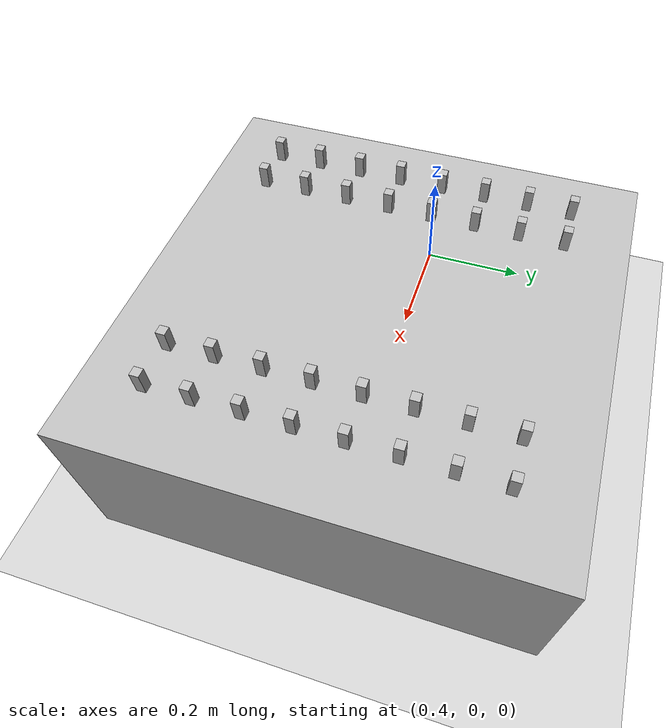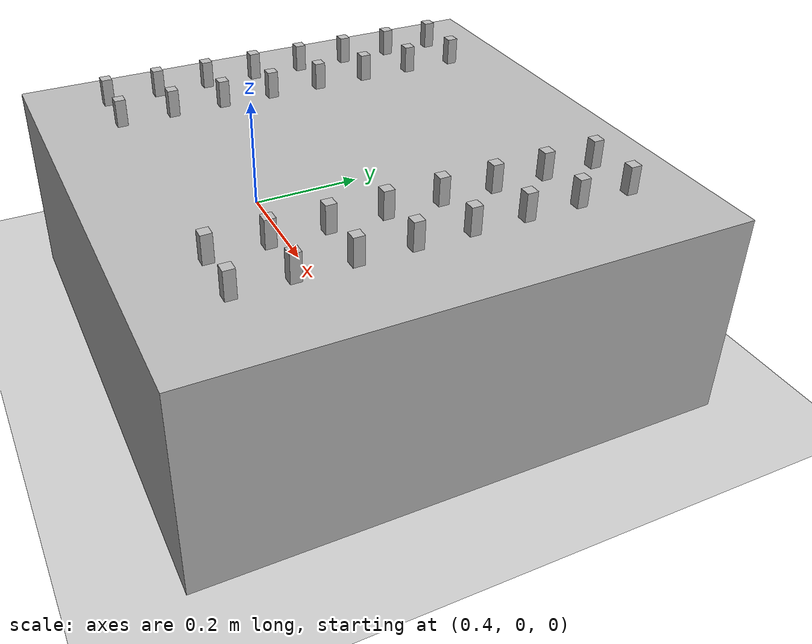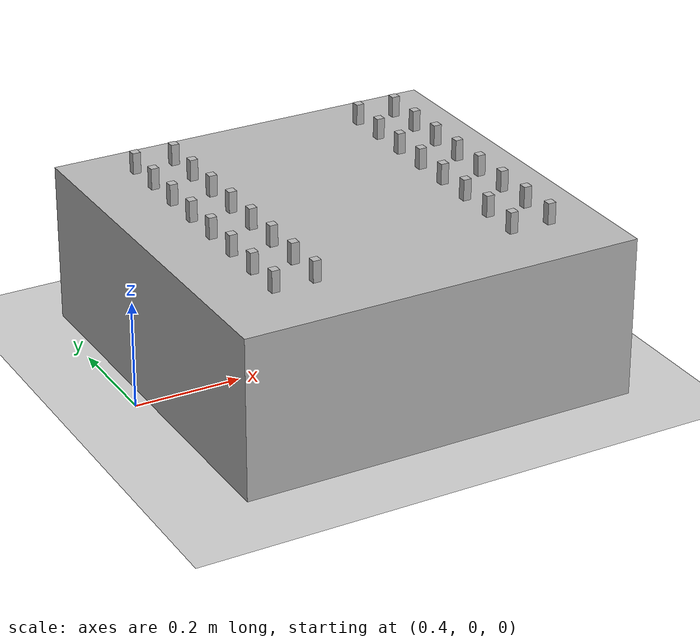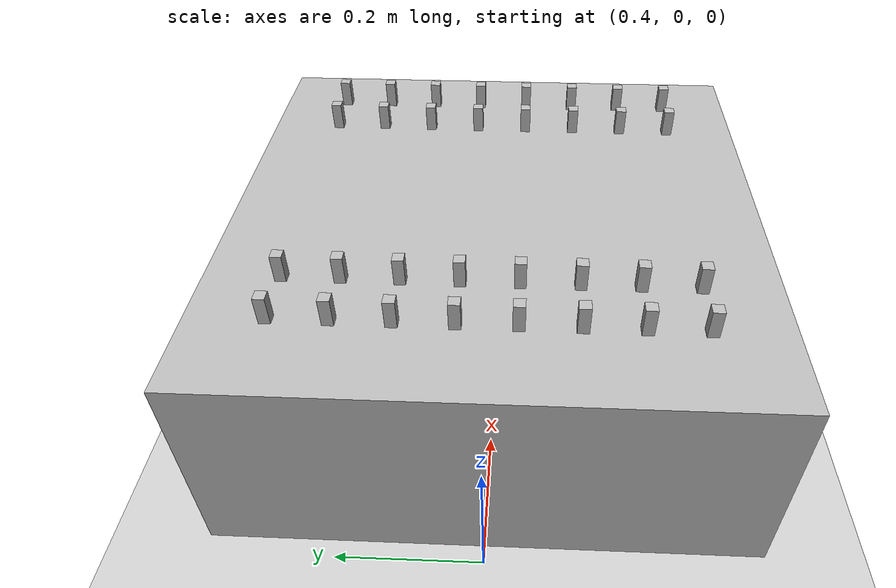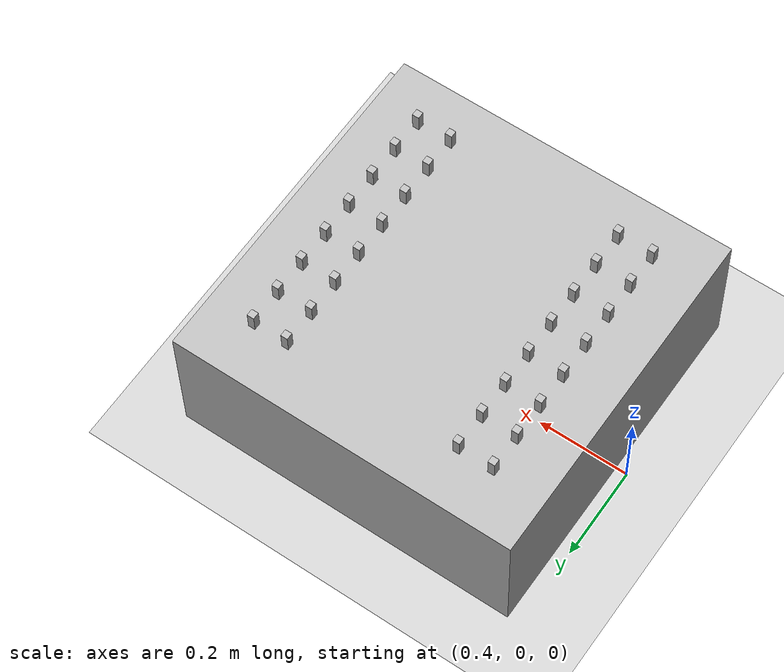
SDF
<sdf version="1.5">
 <world name="default">
  <include><uri>model://sun</uri></include>
  <include><uri>model://ground_plane</uri></include>
  <model name="table">
   <static>1</static>
   <pose>0.8 0 0.15 0 0 0</pose>
   <link name="link">
    <inertial>
     <mass>1</mass>
     <inertia>
      <ixx>0.166667</ixx>
      <ixy>0</ixy>
      <ixz>0</ixz>
      <iyy>0.166667</iyy>
      <iyz>0</iyz>
      <izz>0.166667</izz>
     </inertia>
    </inertial>
    <visual name="visual"><geometry><box><size>0.75 0.75 0.3</size></box></geometry></visual>
    <collision name="collision"><geometry><box><size>0.75 0.75 0.3</size></box></geometry></collision>
   </link>
  </model>
  <model name="piece11">
   <pose>0.535 -0.266 0.33 0 0 0</pose>
   <link name="box">
    <inertial>
     <mass>1</mass>
     <inertia><ixx>2</ixx><ixy>0.0</ixy><ixz>0.0</ixz><iyy>2</iyy><iyz>0.0</iyz><izz>1</izz></inertia>
    </inertial>
    <visual name="first"><geometry><box><size>0.015 0.015 0.04</size></box></geometry></visual>
    <collision name="first">
     <geometry><box><size>0.01 0.01 0.04</size></box></geometry>
     <surface>
      <friction><ode><slip1>0.1</slip1><slip2>0</slip2><mu>1</mu><mu2>0</mu2></ode></friction>
      <contact><ode><kp>10000.0</kp><kd>1.0</kd><min_depth>0</min_depth></ode></contact>
     </surface>
    </collision>
   </link>
  </model>
  <model name="piece12">
   <pose>0.535 -0.19 0.33 0 0 0</pose>
   <link name="box">
    <inertial>
     <mass>1</mass>
     <inertia><ixx>2</ixx><ixy>0.0</ixy><ixz>0.0</ixz><iyy>2</iyy><iyz>0.0</iyz><izz>1</izz></inertia>
    </inertial>
    <visual name="first"><geometry><box><size>0.015 0.015 0.04</size></box></geometry></visual>
    <collision name="first">
     <geometry><box><size>0.01 0.01 0.04</size></box></geometry>
     <surface>
      <friction><ode><slip1>0.1</slip1><slip2>0</slip2><mu>1</mu><mu2>0</mu2></ode></friction>
      <contact><ode><kp>10000.0</kp><kd>1.0</kd><min_depth>0</min_depth></ode></contact>
     </surface>
    </collision>
   </link>
  </model>
  <model name="piece13">
   <pose>0.535 -0.114 0.33 0 0 0</pose>
   <link name="box">
    <inertial>
     <mass>1</mass>
     <inertia><ixx>2</ixx><ixy>0.0</ixy><ixz>0.0</ixz><iyy>2</iyy><iyz>0.0</iyz><izz>1</izz></inertia>
    </inertial>
    <visual name="first"><geometry><box><size>0.015 0.015 0.04</size></box></geometry></visual>
    <collision name="first">
     <geometry><box><size>0.01 0.01 0.04</size></box></geometry>
     <surface>
      <friction><ode><slip1>0.1</slip1><slip2>0</slip2><mu>1</mu><mu2>0</mu2></ode></friction>
      <contact><ode><kp>10000.0</kp><kd>1.0</kd><min_depth>0</min_depth></ode></contact>
     </surface>
    </collision>
   </link>
  </model>
  <model name="piece14">
   <pose>0.535 -0.038 0.33 0 0 0</pose>
   <link name="box">
    <inertial>
     <mass>1</mass>
     <inertia><ixx>2</ixx><ixy>0.0</ixy><ixz>0.0</ixz><iyy>2</iyy><iyz>0.0</iyz><izz>1</izz></inertia>
    </inertial>
    <visual name="first"><geometry><box><size>0.015 0.015 0.04</size></box></geometry></visual>
    <collision name="first">
     <geometry><box><size>0.01 0.01 0.04</size></box></geometry>
     <surface>
      <friction><ode><slip1>0.1</slip1><slip2>0</slip2><mu>1</mu><mu2>0</mu2></ode></friction>
      <contact><ode><kp>10000.0</kp><kd>1.0</kd><min_depth>0</min_depth></ode></contact>
     </surface>
    </collision>
   </link>
  </model>
  <model name="piece15">
   <pose>0.535 0.038 0.33 0 0 0</pose>
   <link name="box">
    <inertial>
     <mass>1</mass>
     <inertia><ixx>2</ixx><ixy>0.0</ixy><ixz>0.0</ixz><iyy>2</iyy><iyz>0.0</iyz><izz>1</izz></inertia>
    </inertial>
    <visual name="first"><geometry><box><size>0.015 0.015 0.04</size></box></geometry></visual>
    <collision name="first">
     <geometry><box><size>0.01 0.01 0.04</size></box></geometry>
     <surface>
      <friction><ode><slip1>0.1</slip1><slip2>0</slip2><mu>1</mu><mu2>0</mu2></ode></friction>
      <contact><ode><kp>10000.0</kp><kd>1.0</kd><min_depth>0</min_depth></ode></contact>
     </surface>
    </collision>
   </link>
  </model>
  <model name="piece16">
   <pose>0.535 +0.114 0.33 0 0 0</pose>
   <link name="box">
    <inertial>
     <mass>1</mass>
     <inertia><ixx>2</ixx><ixy>0.0</ixy><ixz>0.0</ixz><iyy>2</iyy><iyz>0.0</iyz><izz>1</izz></inertia>
    </inertial>
    <visual name="first"><geometry><box><size>0.015 0.015 0.04</size></box></geometry></visual>
    <collision name="first">
     <geometry><box><size>0.01 0.01 0.04</size></box></geometry>
     <surface>
      <friction><ode><slip1>0.1</slip1><slip2>0</slip2><mu>1</mu><mu2>0</mu2></ode></friction>
      <contact><ode><kp>10000.0</kp><kd>1.0</kd><min_depth>0</min_depth></ode></contact>
     </surface>
    </collision>
   </link>
  </model>
  <model name="piece17">
   <pose>0.535 0.19 0.33 0 0 0</pose>
   <link name="box">
    <inertial>
     <mass>1</mass>
     <inertia><ixx>2</ixx><ixy>0.0</ixy><ixz>0.0</ixz><iyy>2</iyy><iyz>0.0</iyz><izz>1</izz></inertia>
    </inertial>
    <visual name="first"><geometry><box><size>0.015 0.015 0.04</size></box></geometry></visual>
    <collision name="first">
     <geometry><box><size>0.01 0.01 0.04</size></box></geometry>
     <surface>
      <friction><ode><slip1>0.1</slip1><slip2>0</slip2><mu>1</mu><mu2>0</mu2></ode></friction>
      <contact><ode><kp>10000.0</kp><kd>1.0</kd><min_depth>0</min_depth></ode></contact>
     </surface>
    </collision>
   </link>
  </model>
  <model name="piece18">
   <pose>0.535 0.266 0.33 0 0 0</pose>
   <link name="box">
    <inertial>
     <mass>1</mass>
     <inertia><ixx>2</ixx><ixy>0.0</ixy><ixz>0.0</ixz><iyy>2</iyy><iyz>0.0</iyz><izz>1</izz></inertia>
    </inertial>
    <visual name="first"><geometry><box><size>0.015 0.015 0.04</size></box></geometry></visual>
    <collision name="first">
     <geometry><box><size>0.01 0.01 0.04</size></box></geometry>
     <surface>
      <friction><ode><slip1>0.1</slip1><slip2>0</slip2><mu>1</mu><mu2>0</mu2></ode></friction>
      <contact><ode><kp>10000.0</kp><kd>1.0</kd><min_depth>0</min_depth></ode></contact>
     </surface>
    </collision>
   </link>
  </model>
  <model name="piece21">
   <pose>0.611 -0.266 0.33 0 0 0</pose>
   <link name="box">
    <inertial>
     <mass>1</mass>
     <inertia><ixx>2</ixx><ixy>0.0</ixy><ixz>0.0</ixz><iyy>2</iyy><iyz>0.0</iyz><izz>1</izz></inertia>
    </inertial>
    <visual name="first"><geometry><box><size>0.015 0.015 0.04</size></box></geometry></visual>
    <collision name="first">
     <geometry><box><size>0.01 0.01 0.04</size></box></geometry>
     <surface>
      <friction><ode><slip1>0.3</slip1><slip2>0</slip2><mu>1</mu><mu2>0</mu2></ode></friction>
      <contact><ode><kp>100000.0</kp><kd>1.0</kd><min_depth>0</min_depth></ode></contact>
     </surface>
    </collision>
   </link>
  </model>
  <model name="piece22">
   <pose>0.611 -0.19 0.33 0 0 0</pose>
   <link name="box">
    <inertial>
     <mass>1</mass>
     <inertia><ixx>2</ixx><ixy>0.0</ixy><ixz>0.0</ixz><iyy>2</iyy><iyz>0.0</iyz><izz>1</izz></inertia>
    </inertial>
    <visual name="first"><geometry><box><size>0.015 0.015 0.04</size></box></geometry></visual>
    <collision name="first">
     <geometry><box><size>0.01 0.01 0.04</size></box></geometry>
     <surface>
      <friction><ode><slip1>0.1</slip1><slip2>0</slip2><mu>1</mu><mu2>0</mu2></ode></friction>
      <contact><ode><kp>10000.0</kp><kd>1.0</kd><min_depth>0</min_depth></ode></contact>
     </surface>
    </collision>
   </link>
  </model>
  <model name="piece23">
   <pose>0.611 -0.114 0.33 0 0 0</pose>
   <link name="box">
    <inertial>
     <mass>1</mass>
     <inertia><ixx>2</ixx><ixy>0.0</ixy><ixz>0.0</ixz><iyy>2</iyy><iyz>0.0</iyz><izz>1</izz></inertia>
    </inertial>
    <visual name="first"><geometry><box><size>0.015 0.015 0.04</size></box></geometry></visual>
    <collision name="first">
     <geometry><box><size>0.01 0.01 0.04</size></box></geometry>
     <surface>
      <friction><ode><slip1>0.1</slip1><slip2>0</slip2><mu>1</mu><mu2>0</mu2></ode></friction>
      <contact><ode><kp>10000.0</kp><kd>1.0</kd><min_depth>0</min_depth></ode></contact>
     </surface>
    </collision>
   </link>
  </model>
  <model name="piece24">
   <pose>0.611 -0.038 0.33 0 0 0</pose>
   <link name="box">
    <inertial>
     <mass>1</mass>
     <inertia><ixx>2</ixx><ixy>0.0</ixy><ixz>0.0</ixz><iyy>2</iyy><iyz>0.0</iyz><izz>1</izz></inertia>
    </inertial>
    <visual name="first"><geometry><box><size>0.015 0.015 0.04</size></box></geometry></visual>
    <collision name="first">
     <geometry><box><size>0.01 0.01 0.04</size></box></geometry>
     <surface>
      <friction><ode><slip1>0.1</slip1><slip2>0</slip2><mu>1</mu><mu2>0</mu2></ode></friction>
      <contact><ode><kp>10000.0</kp><kd>1.0</kd><min_depth>0</min_depth></ode></contact>
     </surface>
    </collision>
   </link>
  </model>
  <model name="piece25">
   <pose>0.611 0.038 0.33 0 0 0</pose>
   <link name="box">
    <inertial>
     <mass>1</mass>
     <inertia><ixx>2</ixx><ixy>0.0</ixy><ixz>0.0</ixz><iyy>2</iyy><iyz>0.0</iyz><izz>1</izz></inertia>
    </inertial>
    <visual name="first"><geometry><box><size>0.015 0.015 0.04</size></box></geometry></visual>
    <collision name="first">
     <geometry><box><size>0.01 0.01 0.04</size></box></geometry>
     <surface>
      <friction><ode><slip1>0.1</slip1><slip2>0</slip2><mu>1</mu><mu2>0</mu2></ode></friction>
      <contact><ode><kp>10000.0</kp><kd>1.0</kd><min_depth>0</min_depth></ode></contact>
     </surface>
    </collision>
   </link>
  </model>
  <model name="piece26">
   <pose>0.611 +0.114 0.33 0 0 0</pose>
   <link name="box">
    <inertial>
     <mass>1</mass>
     <inertia><ixx>2</ixx><ixy>0.0</ixy><ixz>0.0</ixz><iyy>2</iyy><iyz>0.0</iyz><izz>1</izz></inertia>
    </inertial>
    <visual name="first"><geometry><box><size>0.015 0.015 0.04</size></box></geometry></visual>
    <collision name="first">
     <geometry><box><size>0.01 0.01 0.04</size></box></geometry>
     <surface>
      <friction><ode><slip1>0.1</slip1><slip2>0</slip2><mu>1</mu><mu2>0</mu2></ode></friction>
      <contact><ode><kp>10000.0</kp><kd>1.0</kd><min_depth>0</min_depth></ode></contact>
     </surface>
    </collision>
   </link>
  </model>
  <model name="piece27">
   <pose>0.611 0.19 0.33 0 0 0</pose>
   <link name="box">
    <inertial>
     <mass>1</mass>
     <inertia><ixx>2</ixx><ixy>0.0</ixy><ixz>0.0</ixz><iyy>2</iyy><iyz>0.0</iyz><izz>1</izz></inertia>
    </inertial>
    <visual name="first"><geometry><box><size>0.015 0.015 0.04</size></box></geometry></visual>
    <collision name="first">
     <geometry><box><size>0.01 0.01 0.04</size></box></geometry>
     <surface>
      <friction><ode><slip1>0.1</slip1><slip2>0</slip2><mu>1</mu><mu2>0</mu2></ode></friction>
      <contact><ode><kp>10000.0</kp><kd>1.0</kd><min_depth>0</min_depth></ode></contact>
     </surface>
    </collision>
   </link>
  </model>
  <model name="piece28">
   <pose>0.611 0.266 0.33 0 0 0</pose>
   <link name="box">
    <inertial>
     <mass>1</mass>
     <inertia><ixx>2</ixx><ixy>0.0</ixy><ixz>0.0</ixz><iyy>2</iyy><iyz>0.0</iyz><izz>1</izz></inertia>
    </inertial>
    <visual name="first"><geometry><box><size>0.015 0.015 0.04</size></box></geometry></visual>
    <collision name="first">
     <geometry><box><size>0.01 0.01 0.04</size></box></geometry>
     <surface>
      <friction><ode><slip1>0.1</slip1><slip2>0</slip2><mu>1</mu><mu2>0</mu2></ode></friction>
      <contact><ode><kp>10000.0</kp><kd>1.0</kd><min_depth>0</min_depth></ode></contact>
     </surface>
    </collision>
   </link>
  </model>
  <model name="piece81">
   <pose>1.067 -0.266 0.33 0 0 0</pose>
   <link name="box">
    <inertial>
     <mass>1</mass>
     <inertia><ixx>2</ixx><ixy>0.0</ixy><ixz>0.0</ixz><iyy>2</iyy><iyz>0.0</iyz><izz>1</izz></inertia>
    </inertial>
    <visual name="first"><geometry><box><size>0.015 0.015 0.04</size></box></geometry></visual>
    <collision name="first">
     <geometry><box><size>0.01 0.01 0.04</size></box></geometry>
     <surface>
      <friction><ode><slip1>0.1</slip1><slip2>0</slip2><mu>1</mu><mu2>0</mu2></ode></friction>
      <contact><ode><kp>10000.0</kp><kd>1.0</kd><min_depth>0</min_depth></ode></contact>
     </surface>
    </collision>
   </link>
  </model>
  <model name="piece82">
   <pose>1.067 -0.19 0.33 0 0 0</pose>
   <link name="box">
    <inertial>
     <mass>1</mass>
     <inertia><ixx>2</ixx><ixy>0.0</ixy><ixz>0.0</ixz><iyy>2</iyy><iyz>0.0</iyz><izz>1</izz></inertia>
    </inertial>
    <visual name="first"><geometry><box><size>0.015 0.015 0.04</size></box></geometry></visual>
    <collision name="first">
     <geometry><box><size>0.01 0.01 0.04</size></box></geometry>
     <surface>
      <friction><ode><slip1>0.1</slip1><slip2>0</slip2><mu>1</mu><mu2>0</mu2></ode></friction>
      <contact><ode><kp>10000.0</kp><kd>1.0</kd><min_depth>0</min_depth></ode></contact>
     </surface>
    </collision>
   </link>
  </model>
  <model name="piece83">
   <pose>1.067 -0.114 0.33 0 0 0</pose>
   <link name="box">
    <inertial>
     <mass>1</mass>
     <inertia><ixx>2</ixx><ixy>0.0</ixy><ixz>0.0</ixz><iyy>2</iyy><iyz>0.0</iyz><izz>1</izz></inertia>
    </inertial>
    <visual name="first"><geometry><box><size>0.015 0.015 0.04</size></box></geometry></visual>
    <collision name="first">
     <geometry><box><size>0.01 0.01 0.04</size></box></geometry>
     <surface>
      <friction><ode><slip1>0.1</slip1><slip2>0</slip2><mu>1</mu><mu2>0</mu2></ode></friction>
      <contact><ode><kp>10000.0</kp><kd>1.0</kd><min_depth>0</min_depth></ode></contact>
     </surface>
    </collision>
   </link>
  </model>
  <model name="piece84">
   <pose>1.067 -0.038 0.33 0 0 0</pose>
   <link name="box">
    <inertial>
     <mass>1</mass>
     <inertia><ixx>2</ixx><ixy>0.0</ixy><ixz>0.0</ixz><iyy>2</iyy><iyz>0.0</iyz><izz>1</izz></inertia>
    </inertial>
    <visual name="first"><geometry><box><size>0.015 0.015 0.04</size></box></geometry></visual>
    <collision name="first">
     <geometry><box><size>0.01 0.01 0.04</size></box></geometry>
     <surface>
      <friction><ode><slip1>0.1</slip1><slip2>0</slip2><mu>1</mu><mu2>0</mu2></ode></friction>
      <contact><ode><kp>10000.0</kp><kd>1.0</kd><min_depth>0</min_depth></ode></contact>
     </surface>
    </collision>
   </link>
  </model>
  <model name="piece85">
   <pose>1.067 0.038 0.33 0 0 0</pose>
   <link name="box">
    <inertial>
     <mass>1</mass>
     <inertia><ixx>2</ixx><ixy>0.0</ixy><ixz>0.0</ixz><iyy>2</iyy><iyz>0.0</iyz><izz>1</izz></inertia>
    </inertial>
    <visual name="first"><geometry><box><size>0.015 0.015 0.04</size></box></geometry></visual>
    <collision name="first">
     <geometry><box><size>0.01 0.01 0.04</size></box></geometry>
     <surface>
      <friction><ode><slip1>0.1</slip1><slip2>0</slip2><mu>1</mu><mu2>0</mu2></ode></friction>
      <contact><ode><kp>10000.0</kp><kd>1.0</kd><min_depth>0</min_depth></ode></contact>
     </surface>
    </collision>
   </link>
  </model>
  <model name="piece86">
   <pose>1.067 +0.114 0.33 0 0 0</pose>
   <link name="box">
    <inertial>
     <mass>1</mass>
     <inertia><ixx>2</ixx><ixy>0.0</ixy><ixz>0.0</ixz><iyy>2</iyy><iyz>0.0</iyz><izz>1</izz></inertia>
    </inertial>
    <visual name="first"><geometry><box><size>0.015 0.015 0.04</size></box></geometry></visual>
    <collision name="first">
     <geometry><box><size>0.01 0.01 0.04</size></box></geometry>
     <surface>
      <friction><ode><slip1>0.1</slip1><slip2>0</slip2><mu>1</mu><mu2>0</mu2></ode></friction>
      <contact><ode><kp>10000.0</kp><kd>1.0</kd><min_depth>0</min_depth></ode></contact>
     </surface>
    </collision>
   </link>
  </model>
  <model name="piece87">
   <pose>1.067 0.19 0.33 0 0 0</pose>
   <link name="box">
    <inertial>
     <mass>1</mass>
     <inertia><ixx>2</ixx><ixy>0.0</ixy><ixz>0.0</ixz><iyy>2</iyy><iyz>0.0</iyz><izz>1</izz></inertia>
    </inertial>
    <visual name="first"><geometry><box><size>0.015 0.015 0.04</size></box></geometry></visual>
    <collision name="first">
     <geometry><box><size>0.01 0.01 0.04</size></box></geometry>
     <surface>
      <friction><ode><slip1>0.1</slip1><slip2>0</slip2><mu>1</mu><mu2>0</mu2></ode></friction>
      <contact><ode><kp>10000.0</kp><kd>1.0</kd><min_depth>0</min_depth></ode></contact>
     </surface>
    </collision>
   </link>
  </model>
  <model name="piece88">
   <pose>1.067 0.266 0.33 0 0 0</pose>
   <link name="box">
    <inertial>
     <mass>1</mass>
     <inertia><ixx>2</ixx><ixy>0.0</ixy><ixz>0.0</ixz><iyy>2</iyy><iyz>0.0</iyz><izz>1</izz></inertia>
    </inertial>
    <visual name="first"><geometry><box><size>0.015 0.015 0.04</size></box></geometry></visual>
    <collision name="first">
     <geometry><box><size>0.01 0.01 0.04</size></box></geometry>
     <surface>
      <friction><ode><slip1>0.1</slip1><slip2>0</slip2><mu>1</mu><mu2>0</mu2></ode></friction>
      <contact><ode><kp>10000.0</kp><kd>1.0</kd><min_depth>0</min_depth></ode></contact>
     </surface>
    </collision>
   </link>
  </model>
  <model name="piece71">
   <pose>0.991 -0.266 0.33 0 0 0</pose>
   <link name="box">
    <inertial>
     <mass>1</mass>
     <inertia><ixx>2</ixx><ixy>0.0</ixy><ixz>0.0</ixz><iyy>2</iyy><iyz>0.0</iyz><izz>1</izz></inertia>
    </inertial>
    <visual name="first"><geometry><box><size>0.015 0.015 0.04</size></box></geometry></visual>
    <collision name="first">
     <geometry><box><size>0.01 0.01 0.04</size></box></geometry>
     <surface>
      <friction><ode><slip1>0.1</slip1><slip2>0</slip2><mu>1</mu><mu2>0</mu2></ode></friction>
      <contact><ode><kp>10000.0</kp><kd>1.0</kd><min_depth>0</min_depth></ode></contact>
     </surface>
    </collision>
   </link>
  </model>
  <model name="piece72">
   <pose>0.991 -0.19 0.33 0 0 0</pose>
   <link name="box">
    <inertial>
     <mass>1</mass>
     <inertia><ixx>2</ixx><ixy>0.0</ixy><ixz>0.0</ixz><iyy>2</iyy><iyz>0.0</iyz><izz>1</izz></inertia>
    </inertial>
    <visual name="first"><geometry><box><size>0.015 0.015 0.04</size></box></geometry></visual>
    <collision name="first">
     <geometry><box><size>0.01 0.01 0.04</size></box></geometry>
     <surface>
      <friction><ode><slip1>0.1</slip1><slip2>0</slip2><mu>1</mu><mu2>0</mu2></ode></friction>
      <contact><ode><kp>10000.0</kp><kd>1.0</kd><min_depth>0</min_depth></ode></contact>
     </surface>
    </collision>
   </link>
  </model>
  <model name="piece73">
   <pose>0.991 -0.114 0.33 0 0 0</pose>
   <link name="box">
    <inertial>
     <mass>1</mass>
     <inertia><ixx>2</ixx><ixy>0.0</ixy><ixz>0.0</ixz><iyy>2</iyy><iyz>0.0</iyz><izz>1</izz></inertia>
    </inertial>
    <visual name="first"><geometry><box><size>0.015 0.015 0.04</size></box></geometry></visual>
    <collision name="first">
     <geometry><box><size>0.01 0.01 0.04</size></box></geometry>
     <surface>
      <friction><ode><slip1>0.1</slip1><slip2>0</slip2><mu>1</mu><mu2>0</mu2></ode></friction>
      <contact><ode><kp>10000.0</kp><kd>1.0</kd><min_depth>0</min_depth></ode></contact>
     </surface>
    </collision>
   </link>
  </model>
  <model name="piece74">
   <pose>0.991 -0.038 0.33 0 0 0</pose>
   <link name="box">
    <inertial>
     <mass>1</mass>
     <inertia><ixx>2</ixx><ixy>0.0</ixy><ixz>0.0</ixz><iyy>2</iyy><iyz>0.0</iyz><izz>1</izz></inertia>
    </inertial>
    <visual name="first"><geometry><box><size>0.015 0.015 0.04</size></box></geometry></visual>
    <collision name="first">
     <geometry><box><size>0.01 0.01 0.04</size></box></geometry>
     <surface>
      <friction><ode><slip1>0.1</slip1><slip2>0</slip2><mu>1</mu><mu2>0</mu2></ode></friction>
      <contact><ode><kp>10000.0</kp><kd>1.0</kd><min_depth>0</min_depth></ode></contact>
     </surface>
    </collision>
   </link>
  </model>
  <model name="piece75">
   <pose>0.991 0.038 0.33 0 0 0</pose>
   <link name="box">
    <inertial>
     <mass>1</mass>
     <inertia><ixx>2</ixx><ixy>0.0</ixy><ixz>0.0</ixz><iyy>2</iyy><iyz>0.0</iyz><izz>1</izz></inertia>
    </inertial>
    <visual name="first"><geometry><box><size>0.015 0.015 0.04</size></box></geometry></visual>
    <collision name="first">
     <geometry><box><size>0.01 0.01 0.04</size></box></geometry>
     <surface>
      <friction><ode><slip1>0.1</slip1><slip2>0</slip2><mu>1</mu><mu2>0</mu2></ode></friction>
      <contact><ode><kp>10000.0</kp><kd>1.0</kd><min_depth>0</min_depth></ode></contact>
     </surface>
    </collision>
   </link>
  </model>
  <model name="piece76">
   <pose>0.991 +0.114 0.33 0 0 0</pose>
   <link name="box">
    <inertial>
     <mass>1</mass>
     <inertia><ixx>2</ixx><ixy>0.0</ixy><ixz>0.0</ixz><iyy>2</iyy><iyz>0.0</iyz><izz>1</izz></inertia>
    </inertial>
    <visual name="first"><geometry><box><size>0.015 0.015 0.04</size></box></geometry></visual>
    <collision name="first">
     <geometry><box><size>0.01 0.01 0.04</size></box></geometry>
     <surface>
      <friction><ode><slip1>0.1</slip1><slip2>0</slip2><mu>1</mu><mu2>0</mu2></ode></friction>
      <contact><ode><kp>10000.0</kp><kd>1.0</kd><min_depth>0</min_depth></ode></contact>
     </surface>
    </collision>
   </link>
  </model>
  <model name="piece77">
   <pose>0.991 0.19 0.33 0 0 0</pose>
   <link name="box">
    <inertial>
     <mass>1</mass>
     <inertia><ixx>2</ixx><ixy>0.0</ixy><ixz>0.0</ixz><iyy>2</iyy><iyz>0.0</iyz><izz>1</izz></inertia>
    </inertial>
    <visual name="first"><geometry><box><size>0.015 0.015 0.04</size></box></geometry></visual>
    <collision name="first">
     <geometry><box><size>0.01 0.01 0.04</size></box></geometry>
     <surface>
      <friction><ode><slip1>0.1</slip1><slip2>0</slip2><mu>1</mu><mu2>0</mu2></ode></friction>
      <contact><ode><kp>10000.0</kp><kd>1.0</kd><min_depth>0</min_depth></ode></contact>
     </surface>
    </collision>
   </link>
  </model>
  <model name="piece78">
   <pose>0.991 0.266 0.33 0 0 0</pose>
   <link name="box">
    <inertial>
     <mass>1</mass>
     <inertia><ixx>2</ixx><ixy>0.0</ixy><ixz>0.0</ixz><iyy>2</iyy><iyz>0.0</iyz><izz>1</izz></inertia>
    </inertial>
    <visual name="first"><geometry><box><size>0.015 0.015 0.04</size></box></geometry></visual>
    <collision name="first">
     <geometry><box><size>0.01 0.01 0.04</size></box></geometry>
     <surface>
      <friction><ode><slip1>0.1</slip1><slip2>0</slip2><mu>1</mu><mu2>0</mu2></ode></friction>
      <contact><ode><kp>10000.0</kp><kd>1.0</kd><min_depth>0</min_depth></ode></contact>
     </surface>
    </collision>
   </link>
  </model>
 </world>
</sdf>
